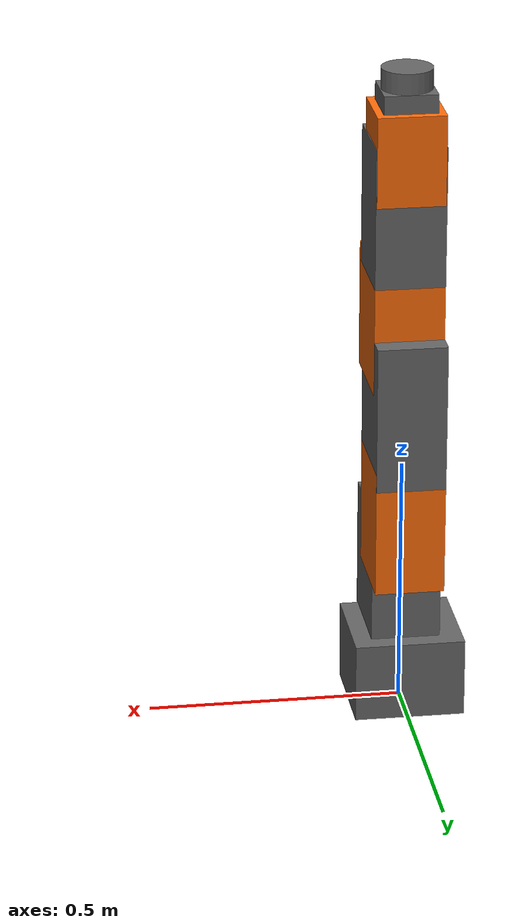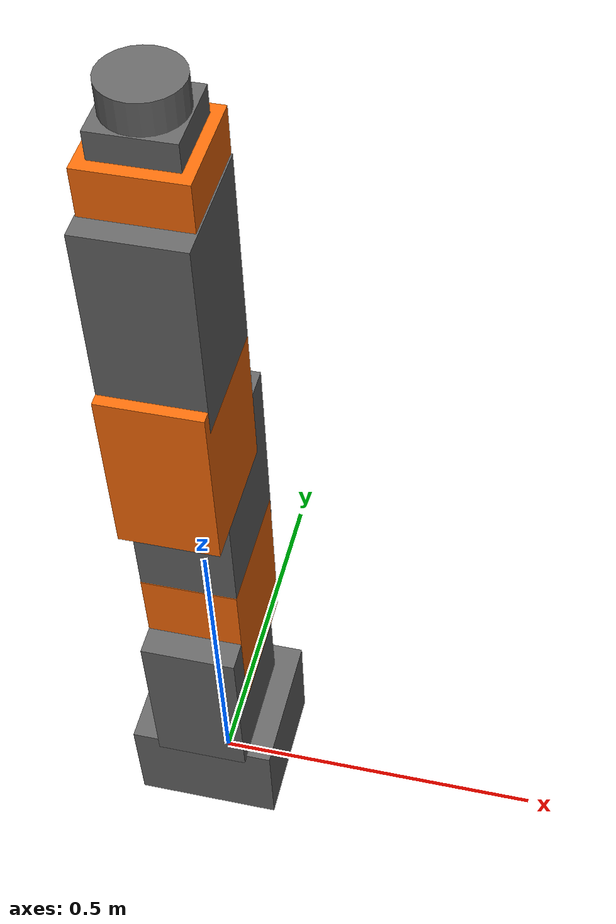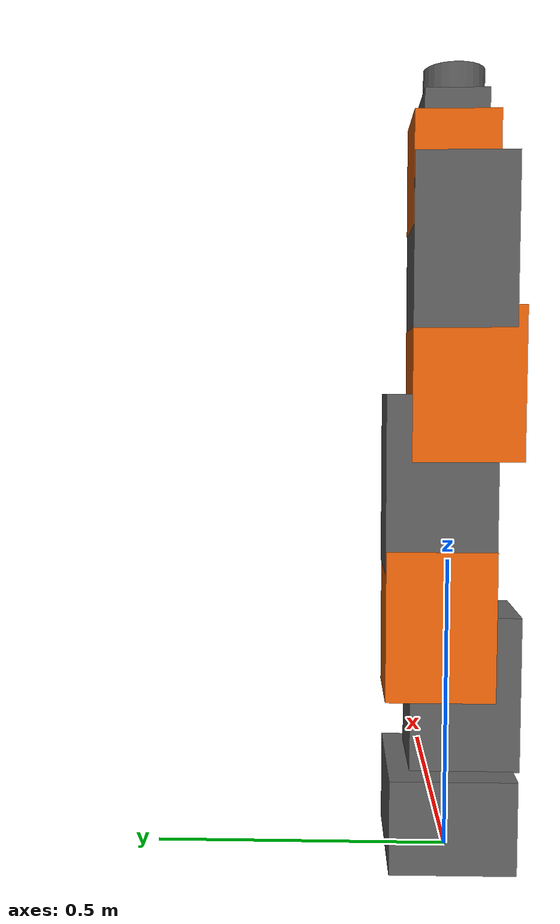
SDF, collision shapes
<?xml version="1.0"?>
<sdf version="1.7">
  <model name="iiwa7">
    <link name="iiwa_link_0">
      <inertial>
        <pose>-0.013 0 0.07 0 0 0</pose>
        <mass>3.863</mass>
        <inertia>
          <ixx>0.0141</ixx>
          <ixy>0</ixy>
          <ixz>0</ixz>
          <iyy>0.0171</iyy>
          <iyz>0</iyz>
          <izz>0.0178</izz>
        </inertia>
      </inertial>
      <visual name="iiwa_link_0_visual">
        <geometry>
          <mesh>
            <scale>1 1 1</scale>
            <uri>package://drake_models/iiwa_description/meshes/iiwa7/visual/link_0.gltf</uri>
          </mesh>
        </geometry>
        <material>
          <diffuse>0.4 0.4 0.4 1.0</diffuse>
        </material>
      </visual>
      <collision name="iiwa_link_0_collision">
        <pose>-0.004563 0 0.07875 0 0 0</pose>
        <geometry>
          <box>
            <size>0.216874 0.207874 0.1575</size>
          </box>
        </geometry>
      </collision>
    </link>
    <link name="iiwa_link_1">
      <pose>0 0 0.1575 0 0 0</pose>
      <inertial>
        <pose>0 -0.0347 0.113 0 0 0</pose>
        <mass>2.7025</mass>
        <inertia>
          <ixx>0.0171</ixx>
          <ixy>0</ixy>
          <ixz>0</ixz>
          <iyy>0.0163</iyy>
          <iyz>0</iyz>
          <izz>0.006</izz>
        </inertia>
      </inertial>
      <visual name="iiwa_link_1_visual">
        <geometry>
          <mesh>
            <scale>1 1 1</scale>
            <uri>package://drake_models/iiwa_description/meshes/iiwa7/visual/link_1.gltf</uri>
          </mesh>
        </geometry>
        <material>
          <diffuse>0.4 0.4 0.4 1.0</diffuse>
        </material>
      </visual>
      <collision name="iiwa_link_1_collision">
        <pose>0 -0.023301 0.127997 0 0 0</pose>
        <geometry>
          <box>
            <size>0.13596 0.182584 0.260995</size>
          </box>
        </geometry>
      </collision>
    </link>
    <joint name="iiwa_joint_1" type="revolute">
      <child>iiwa_link_1</child>
      <parent>iiwa_link_0</parent>
      <axis>
        <xyz expressed_in="__model__">0 0 1</xyz>
        <limit>
          <lower>-2.96706</lower>
          <upper>2.96706</upper>
          <effort>176</effort>
          <velocity>1.7104226670</velocity>
          <drake:acceleration>8.65</drake:acceleration>
        </limit>
        <dynamics>
          <damping>0.0</damping>
          <friction>0</friction>
          <spring_reference>0</spring_reference>
          <spring_stiffness>0</spring_stiffness>
        </dynamics>
      </axis>
      <drake:gear_ratio>160.0</drake:gear_ratio>
      <drake:rotor_inertia>0.00007171875</drake:rotor_inertia>
    </joint>
    <link name="iiwa_link_2">
      <pose>0 0 0.3405 1.5708 0 -3.14159</pose>
      <inertial>
        <pose>0.000 0.0668 0.0344 0 0 0</pose>
        <mass>2.7258</mass>
        <inertia>
          <ixx>0.0170</ixx>
          <ixy>0</ixy>
          <ixz>0</ixz>
          <iyy>0.0061</iyy>
          <iyz>0</iyz>
          <izz>0.0162</izz>
        </inertia>
      </inertial>
      <visual name="iiwa_link_2_visual">
        <geometry>
          <mesh>
            <scale>1 1 1</scale>
            <uri>package://drake_models/iiwa_description/meshes/iiwa7/visual/link_2.gltf</uri>
          </mesh>
        </geometry>
        <material>
          <diffuse>1.0 0.423529411765 0.0392156862745 1.0</diffuse>
        </material>
      </visual>
      <collision name="iiwa_link_2_collision">
        <pose>0 0.0580045 0.0173035 0 0 0</pose>
        <geometry>
          <box>
            <size>0.135988 0.251991 0.182605</size>
          </box>
        </geometry>
      </collision>
    </link>
    <joint name="iiwa_joint_2" type="revolute">
      <child>iiwa_link_2</child>
      <parent>iiwa_link_1</parent>
      <axis>
        <xyz expressed_in="__model__">-0 1 0</xyz>
        <limit>
          <lower>-2.0944</lower>
          <upper>2.0944</upper>
          <effort>176</effort>
          <velocity>1.7104226670</velocity>
          <drake:acceleration>5.44</drake:acceleration>
        </limit>
        <dynamics>
          <damping>0</damping>
          <friction>0</friction>
          <spring_reference>0</spring_reference>
          <spring_stiffness>0</spring_stiffness>
        </dynamics>
      </axis>
      <drake:gear_ratio>160.0</drake:gear_ratio>
      <drake:rotor_inertia>0.0001737109</drake:rotor_inertia>
    </joint>
    <link name="iiwa_link_3">
      <pose>0 0 0.5245 0 0 0</pose>
      <inertial>
        <pose>0 0.0296 0.1265 0 0 0</pose>
        <mass>3.175</mass>
        <inertia>
          <ixx>0.025</ixx>
          <ixy>0</ixy>
          <ixz>0</ixz>
          <iyy>0.0238</iyy>
          <iyz>0</iyz>
          <izz>0.0076</izz>
        </inertia>
      </inertial>
      <visual name="iiwa_link_3_visual">
        <geometry>
          <mesh>
            <scale>1 1 1</scale>
            <uri>package://drake_models/iiwa_description/meshes/iiwa7/visual/link_3.gltf</uri>
          </mesh>
        </geometry>
        <material>
          <diffuse>0.4 0.4 0.4 1.0</diffuse>
        </material>
      </visual>
      <collision name="iiwa_link_3_collision">
        <pose>0 0.0182965 0.11073 0 0 0</pose>
        <geometry>
          <box>
            <size>0.135987 0.182593 0.29346</size>
          </box>
        </geometry>
      </collision>
    </link>
    <joint name="iiwa_joint_3" type="revolute">
      <child>iiwa_link_3</child>
      <parent>iiwa_link_2</parent>
      <axis>
        <xyz expressed_in="__model__">0 0 1</xyz>
        <limit>
          <lower>-2.96706</lower>
          <upper>2.96706</upper>
          <effort>110</effort>
          <velocity>1.7453292520</velocity>
          <drake:acceleration>5.69</drake:acceleration>
        </limit>
        <dynamics>
          <damping>0</damping>
          <friction>0</friction>
          <spring_reference>0</spring_reference>
          <spring_stiffness>0</spring_stiffness>
        </dynamics>
      </axis>
      <drake:gear_ratio>160.0</drake:gear_ratio>
      <drake:rotor_inertia>0.0001266406</drake:rotor_inertia>
    </joint>
    <link name="iiwa_link_4">
      <pose>0 0 0.74 1.5708 0 0</pose>
      <inertial>
        <pose>0 0.067 0.034 0 0 0</pose>
        <mass>2.73</mass>
        <inertia>
          <ixx>0.017</ixx>
          <ixy>0</ixy>
          <ixz>0</ixz>
          <iyy>0.0061</iyy>
          <iyz>0</iyz>
          <izz>0.0162</izz>
        </inertia>
      </inertial>
      <visual name="iiwa_link_4_visual">
        <geometry>
          <mesh>
            <scale>1 1 1</scale>
            <uri>package://drake_models/iiwa_description/meshes/iiwa7/visual/link_4.gltf</uri>
          </mesh>
        </geometry>
        <material>
          <diffuse>1.0 0.423529411765 0.0392156862745 1.0</diffuse>
        </material>
      </visual>
      <collision name="iiwa_link_4_collision">
        <pose>0 0.0580045 0.0233035 0 0 0</pose>
        <geometry>
          <box>
            <size>0.135988 0.251991 0.182605</size>
          </box>
        </geometry>
      </collision>
    </link>
    <joint name="iiwa_joint_4" type="revolute">
      <child>iiwa_link_4</child>
      <parent>iiwa_link_3</parent>
      <axis>
        <xyz expressed_in="__model__">0 -1 0</xyz>
        <limit>
          <lower>-2.0944</lower>
          <upper>2.0944</upper>
          <effort>110</effort>
          <velocity>2.2689280276</velocity>
          <drake:acceleration>11.01</drake:acceleration>
        </limit>
        <dynamics>
          <damping>0</damping>
          <friction>0</friction>
          <spring_reference>0</spring_reference>
          <spring_stiffness>0</spring_stiffness>
        </dynamics>
      </axis>
      <drake:gear_ratio>160.0</drake:gear_ratio>
      <drake:rotor_inertia>0.0000709765</drake:rotor_inertia>
    </joint>
    <link name="iiwa_link_5">
      <pose>0 0 0.924 0 0 -3.14159</pose>
      <inertial>
        <pose>0.0001 0.021 0.076 0 0 0</pose>
        <mass>1.69</mass>
        <inertia>
          <ixx>0.01</ixx>
          <ixy>0</ixy>
          <ixz>0</ixz>
          <iyy>0.0087</iyy>
          <iyz>0</iyz>
          <izz>0.00449</izz>
        </inertia>
      </inertial>
      <visual name="iiwa_link_5_visual">
        <geometry>
          <mesh>
            <scale>1 1 1</scale>
            <uri>package://drake_models/iiwa_description/meshes/iiwa7/visual/link_5.gltf</uri>
          </mesh>
        </geometry>
        <material>
          <diffuse>0.4 0.4 0.4 1.0</diffuse>
        </material>
      </visual>
      <collision name="iiwa_link_5_collision">
        <pose>0 0.015546 0.102458 0 0 0</pose>
        <geometry>
          <box>
            <size>0.135999 0.167092 0.276916</size>
          </box>
        </geometry>
      </collision>
    </link>
    <joint name="iiwa_joint_5" type="revolute">
      <child>iiwa_link_5</child>
      <parent>iiwa_link_4</parent>
      <axis>
        <xyz expressed_in="__model__">0 0 1</xyz>
        <limit>
          <lower>-2.96706</lower>
          <upper>2.96706</upper>
          <effort>110</effort>
          <velocity>2.4434609528</velocity>
          <drake:acceleration>11.78</drake:acceleration>
        </limit>
        <dynamics>
          <damping>0</damping>
          <friction>0</friction>
          <spring_reference>0</spring_reference>
          <spring_stiffness>0</spring_stiffness>
        </dynamics>
      </axis>
      <drake:gear_ratio>160.0</drake:gear_ratio>
      <drake:rotor_inertia>0.000054375</drake:rotor_inertia>
    </joint>
    <link name="iiwa_link_6">
      <pose>0 0 1.1395 1.5708 0 -3.14159</pose>
      <inertial>
        <pose>0 0.0026 0.0005 0 0 0</pose>
        <mass>1.8</mass>
        <inertia>
          <ixx>0.0051</ixx>
          <ixy>0</ixy>
          <ixz>0</ixz>
          <iyy>0.0049</iyy>
          <iyz>0</iyz>
          <izz>0.0035</izz>
        </inertia>
      </inertial>
      <visual name="iiwa_link_6_visual">
        <pose>0 0 -0.060700 0 0 0</pose>
        <geometry>
          <mesh>
            <scale>1 1 1</scale>
            <uri>package://drake_models/iiwa_description/meshes/iiwa7/visual/link_6.gltf</uri>
          </mesh>
        </geometry>
        <material>
          <diffuse>1.0 0.423529411765 0.0392156862745 1.0</diffuse>
        </material>
      </visual>
      <collision name="iiwa_link_6_collision">
        <geometry>
          <box>
            <size>0.132334 0.177387 0.137409</size>
          </box>
        </geometry>
      </collision>
    </link>
    <joint name="iiwa_joint_6" type="revolute">
      <child>iiwa_link_6</child>
      <parent>iiwa_link_5</parent>
      <axis>
        <xyz expressed_in="__model__">-0 1 -0</xyz>
        <limit>
          <lower>-2.0944</lower>
          <upper>2.0944</upper>
          <effort>40</effort>
          <velocity>3.1415926536</velocity>
          <drake:acceleration>13.76</drake:acceleration>
        </limit>
        <dynamics>
          <damping>0</damping>
          <friction>0</friction>
          <spring_reference>0</spring_reference>
          <spring_stiffness>0</spring_stiffness>
        </dynamics>
      </axis>
      <drake:gear_ratio>160.0</drake:gear_ratio>
      <drake:rotor_inertia>0.000054765</drake:rotor_inertia>
    </joint>
    <link name="iiwa_link_7">
      <pose>0 0 1.22 0 0 0</pose>
      <inertial>
        <pose>0 0 0.0294 0 0 0</pose>
        <mass>.4</mass>
        <inertia>
          <ixx>0.0004</ixx>
          <ixy>0</ixy>
          <ixz>0</ixz>
          <iyy>0.0004</iyy>
          <iyz>0</iyz>
          <izz>0.0005</izz>
        </inertia>
      </inertial>
      <visual name="iiwa_link_7_visual">
        <geometry>
          <mesh>
            <scale>1 1 1</scale>
            <uri>package://drake_models/iiwa_description/meshes/iiwa7/visual/link_7.gltf</uri>
          </mesh>
        </geometry>
        <material>
          <diffuse>0.4 0.4 0.4 1.0</diffuse>
        </material>
      </visual>
      <collision name="iiwa_link_7_collision">
        <pose>0 0 0.021997 0 0 0</pose>
        <geometry>
          <box>
            <size>0.10385 0.103885 0.045</size>
          </box>
        </geometry>
      </collision>
    </link>
    <joint name="iiwa_joint_7" type="revolute">
      <child>iiwa_link_7</child>
      <parent>iiwa_link_6</parent>
      <axis>
        <xyz expressed_in="__model__">0 0 1</xyz>
        <limit>
          <lower>-3.05433</lower>
          <upper>3.05433</upper>
          <effort>40</effort>
          <velocity>3.1415926536</velocity>
          <drake:acceleration>13.17</drake:acceleration>
        </limit>
        <dynamics>
          <damping>0</damping>
          <friction>0</friction>
          <spring_reference>0</spring_reference>
          <spring_stiffness>0</spring_stiffness>
        </dynamics>
      </axis>
      <drake:gear_ratio>160.0</drake:gear_ratio>
      <drake:rotor_inertia>0.000054375</drake:rotor_inertia>
    </joint>
    <!-- This link and its corresponding weld joint allows us to sense forces via MBP's
    reaction forces output port. -->
    <link name="ft_sensor_link">
        <pose relative_to="iiwa_joint_7">0 0 0.06 0 0 0</pose>
        <inertial>
            <pose>0 0 0 0 0 0</pose>
            <mass>0.44</mass>
            <inertia>
                <ixx>1e-2</ixx>
                <ixy>0.0</ixy>
                <ixz>0.0</ixz>
                <iyy>1e-2</iyy>
                <iyz>0.0</iyz>
                <izz>1e-2</izz>
            </inertia>
        </inertial>
        <visual name="ft_sensor_visual">
            <pose>0 0 0 0 0 0</pose>
            <geometry>
                <cylinder>
                    <length>0.05</length>
                    <radius>0.05</radius>
                </cylinder>
            </geometry>
            <material>
                <diffuse>0.4 0.4 0.4 1.0</diffuse>
            </material>
        </visual>
        <collision name="ft_sensor_collision">
            <pose>0 0 0 0 0 0</pose>
            <geometry>
                <cylinder>
                    <length>0.05</length>
                    <radius>0.05</radius>
                </cylinder>
            </geometry>
        </collision>
    </link>
    <joint name="ft_sensor_weldjoint" type="fixed">
        <parent>iiwa_link_7</parent>
        <child>ft_sensor_link</child>
    </joint>
    <static>0</static>
  </model>
</sdf>
